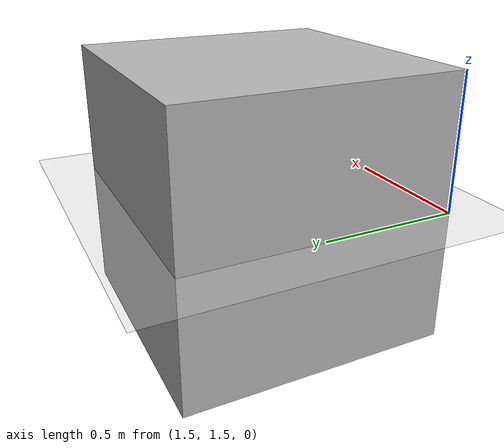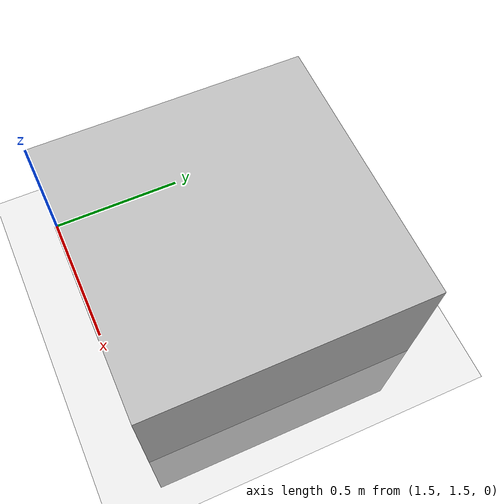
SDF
<?xml version="1.0" ?>
<sdf version="1.6">
  <world name="box_world">
    <include>
      <uri>model://ground_plane</uri>
    </include>
    <include>
      <uri>model://sun</uri>
    </include>

    <physics type="ode">
      <max_step_size>0.02</max_step_size>
      <real_time_update_rate>100</real_time_update_rate>
    </physics>

    <model name="open_box">
      <pose>2 2 0 0 0 0</pose>
      <link name="link">
        <collision name="collision">
          <geometry>
            <box><size>1 1 1</size></box>
          </geometry>
        </collision>
        <visual name="visual">
          <geometry>
            <box><size>1 1 1</size></box>
          </geometry>
        </visual>
      </link>
    </model>
  </world>
</sdf>

<!-- Perimeter Walls (10x0.1x1) forming a square -->
<model name="wall_front">
  <pose>0 5 0.5 0 0 0</pose>
  <link name="link">
    <collision name="collision">
      <geometry>
        <box><size>10 0.1 1</size></box>
      </geometry>
    </collision>
    <visual name="visual">
      <geometry>
        <box><size>10 0.1 1</size></box>
      </geometry>
    </visual>
  </link>
</model>

<model name="wall_back">
  <pose>0 -5 0.5 0 0 0</pose>
  <link name="link">
    <collision name="collision">
      <geometry>
        <box><size>10 0.1 1</size></box>
      </geometry>
    </collision>
    <visual name="visual">
      <geometry>
        <box><size>10 0.1 1</size></box>
      </geometry>
    </visual>
  </link>
</model>

<model name="wall_left">
  <pose>-5 0 0.5 0 0 0</pose>
  <link name="link">
    <collision name="collision">
      <geometry>
        <box><size>0.1 10 1</size></box>
      </geometry>
    </collision>
    <visual name="visual">
      <geometry>
        <box><size>0.1 10 1</size></box>
      </geometry>
    </visual>
  </link>
</model>

<model name="wall_right">
  <pose>5 0 0.5 0 0 0</pose>
  <link name="link">
    <collision name="collision">
      <geometry>
        <box><size>0.1 10 1</size></box>
      </geometry>
    </collision>
    <visual name="visual">
      <geometry>
        <box><size>0.1 10 1</size></box>
      </geometry>
    </visual>
  </link>
</model>
